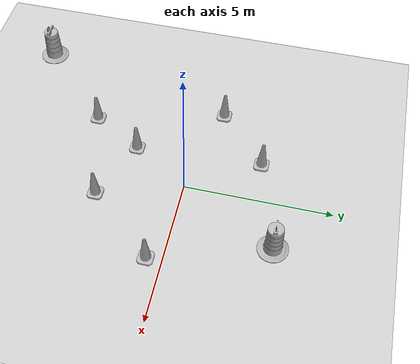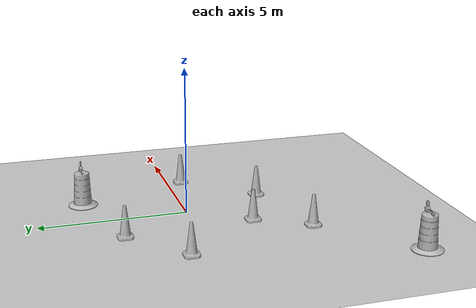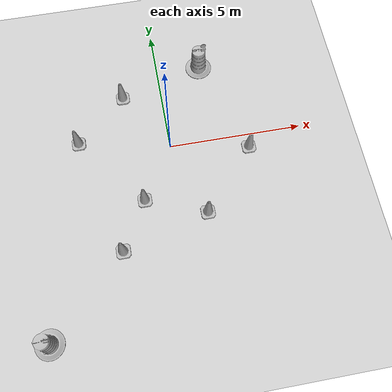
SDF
<sdf version="1.7">
 <world name="default">
  <light name="sun" type="directional">
   <pose>0 0 10 0 -0 0</pose>
   <diffuse>0.8 0.8 0.8 1</diffuse>
   <specular>0.2 0.2 0.2 1</specular>
   <attenuation>
    <range>1000</range>
    <constant>0.9</constant>
    <linear>0.01</linear>
    <quadratic>0.001</quadratic>
   </attenuation>
   <direction>-0.5 0.1 -0.9</direction>
   <spot><inner_angle>0</inner_angle><outer_angle>0</outer_angle><falloff>0</falloff></spot>
  </light>
  <model name="ground_plane">
   <static>1</static>
   <link name="link">
    <collision name="collision">
     <geometry><plane><normal>0 0 1</normal><size>100 100</size></plane></geometry>
     <surface>
      <contact><collide_bitmask>65535</collide_bitmask></contact>
      <friction><ode><mu>100</mu><mu2>50</mu2></ode></friction>
     </surface>
    </collision>
    <visual name="visual">
     <geometry><plane><normal>0 0 1</normal><size>100 100</size></plane></geometry>
     <material>
      <script><uri>file://media/materials/scripts/gazebo.material</uri><name>Gazebo/Grey</name></script>
     </material>
    </visual>
   </link>
  </model>
  <gravity>0 0 -9.8</gravity>
  <magnetic_field>6e-06 2.3e-05 -4.2e-05</magnetic_field>
  <atmosphere type="adiabatic"/>
  <physics type="ode">
   <max_step_size>0.001</max_step_size>
   <real_time_factor>1</real_time_factor>
   <real_time_update_rate>1000</real_time_update_rate>
  </physics>
  <scene><ambient>0.4 0.4 0.4 1</ambient><background>0.7 0.7 0.7 1</background><shadows>1</shadows></scene>
  <audio><device>default</device></audio>
  <spherical_coordinates>
   <surface_model>EARTH_WGS84</surface_model>
   <latitude_deg>0</latitude_deg>
   <longitude_deg>0</longitude_deg>
   <elevation>0</elevation>
   <heading_deg>0</heading_deg>
  </spherical_coordinates>
  <model name="Construction Barrel">
   <link name="link">
    <inertial>
     <pose>0 0 0.4 0 -0 0</pose>
     <mass>500</mass>
     <inertia><ixx>51.2096</ixx><iyy>51.2096</iyy><izz>25</izz><ixy>0</ixy><ixz>0</ixz><iyz>0</iyz></inertia>
    </inertial>
    <collision name="collision">
     <geometry><mesh><uri>model://construction_barrel/meshes/construction_barrel.dae</uri></mesh></geometry>
    </collision>
    <visual name="visual">
     <geometry><mesh><uri>model://construction_barrel/meshes/construction_barrel.dae</uri></mesh></geometry>
    </visual>
   </link>
   <pose>1.68403 3.27475 -0 0 0 -2.4e-05</pose>
  </model>
  <model name="Construction Cone">
   <link name="link">
    <collision name="collision">
     <geometry>
      <mesh><scale>10 10 10</scale><uri>model://construction_cone/meshes/construction_cone.dae</uri></mesh>
     </geometry>
    </collision>
    <visual name="visual">
     <geometry>
      <mesh><scale>10 10 10</scale><uri>model://construction_cone/meshes/construction_cone.dae</uri></mesh>
     </geometry>
    </visual>
    <inertial>
     <inertia><ixx>1</ixx><ixy>0</ixy><ixz>0</ixz><iyy>1</iyy><iyz>0</iyz><izz>1</izz></inertia>
     <mass>1</mass>
    </inertial>
   </link>
   <pose>-2.26405 -3.70268 -1e-06 2e-06 2e-06 0</pose>
  </model>
  <model name="Construction Cone_clone">
   <link name="link">
    <collision name="collision">
     <geometry>
      <mesh><scale>10 10 10</scale><uri>model://construction_cone/meshes/construction_cone.dae</uri></mesh>
     </geometry>
    </collision>
    <visual name="visual">
     <geometry>
      <mesh><scale>10 10 10</scale><uri>model://construction_cone/meshes/construction_cone.dae</uri></mesh>
     </geometry>
    </visual>
    <inertial>
     <inertia><ixx>1</ixx><ixy>0</ixy><ixz>0</ixz><iyy>1</iyy><iyz>0</iyz><izz>1</izz></inertia>
     <mass>1</mass>
    </inertial>
   </link>
   <pose>0.913684 -2.80003 -0 0 -1e-06 0</pose>
  </model>
  <model name="Construction Cone_clone_0">
   <link name="link">
    <collision name="collision">
     <geometry>
      <mesh><scale>10 10 10</scale><uri>model://construction_cone/meshes/construction_cone.dae</uri></mesh>
     </geometry>
    </collision>
    <visual name="visual">
     <geometry>
      <mesh><scale>10 10 10</scale><uri>model://construction_cone/meshes/construction_cone.dae</uri></mesh>
     </geometry>
    </visual>
    <inertial>
     <inertia><ixx>1</ixx><ixy>0</ixy><ixz>0</ixz><iyy>1</iyy><iyz>0</iyz><izz>1</izz></inertia>
     <mass>1</mass>
    </inertial>
   </link>
   <pose>-1.25553 -1.96477 -0 0 -1e-06 0</pose>
  </model>
  <model name="Construction Cone_clone_1">
   <link name="link">
    <collision name="collision">
     <geometry>
      <mesh><scale>10 10 10</scale><uri>model://construction_cone/meshes/construction_cone.dae</uri></mesh>
     </geometry>
    </collision>
    <visual name="visual">
     <geometry>
      <mesh><scale>10 10 10</scale><uri>model://construction_cone/meshes/construction_cone.dae</uri></mesh>
     </geometry>
    </visual>
    <inertial>
     <inertia><ixx>1</ixx><ixy>0</ixy><ixz>0</ixz><iyy>1</iyy><iyz>0</iyz><izz>1</izz></inertia>
     <mass>1</mass>
    </inertial>
   </link>
   <pose>-3.39026 0.704081 -0 0 -1e-06 0</pose>
  </model>
  <model name="Construction Cone_clone_2">
   <link name="link">
    <collision name="collision">
     <geometry>
      <mesh><scale>10 10 10</scale><uri>model://construction_cone/meshes/construction_cone.dae</uri></mesh>
     </geometry>
    </collision>
    <visual name="visual">
     <geometry>
      <mesh><scale>10 10 10</scale><uri>model://construction_cone/meshes/construction_cone.dae</uri></mesh>
     </geometry>
    </visual>
    <inertial>
     <inertia><ixx>1</ixx><ixy>0</ixy><ixz>0</ixz><iyy>1</iyy><iyz>0</iyz><izz>1</izz></inertia>
     <mass>1</mass>
    </inertial>
   </link>
   <pose>-1.49447 2.37871 -0 0 -1e-06 0</pose>
  </model>
  <model name="Construction Cone_clone_3">
   <link name="link">
    <collision name="collision">
     <geometry>
      <mesh><scale>10 10 10</scale><uri>model://construction_cone/meshes/construction_cone.dae</uri></mesh>
     </geometry>
    </collision>
    <visual name="visual">
     <geometry>
      <mesh><scale>10 10 10</scale><uri>model://construction_cone/meshes/construction_cone.dae</uri></mesh>
     </geometry>
    </visual>
    <inertial>
     <inertia><ixx>1</ixx><ixy>0</ixy><ixz>0</ixz><iyy>1</iyy><iyz>0</iyz><izz>1</izz></inertia>
     <mass>1</mass>
    </inertial>
   </link>
   <pose>2.92008 -0.521354 0 -0 -0 -0</pose>
  </model>
  <model name="Construction Barrel_clone">
   <link name="link">
    <inertial>
     <pose>0 0 0.4 0 -0 0</pose>
     <mass>500</mass>
     <inertia><ixx>51.2096</ixx><iyy>51.2096</iyy><izz>25</izz><ixy>0</ixy><ixz>0</ixz><iyz>0</iyz></inertia>
    </inertial>
    <collision name="collision">
     <geometry><mesh><uri>model://construction_barrel/meshes/construction_barrel.dae</uri></mesh></geometry>
    </collision>
    <visual name="visual">
     <geometry><mesh><uri>model://construction_barrel/meshes/construction_barrel.dae</uri></mesh></geometry>
    </visual>
   </link>
   <pose>-5.03531 -6.34939 -1e-06 -3e-06 -1e-06 -2.3e-05</pose>
  </model>
 </world>
</sdf>
